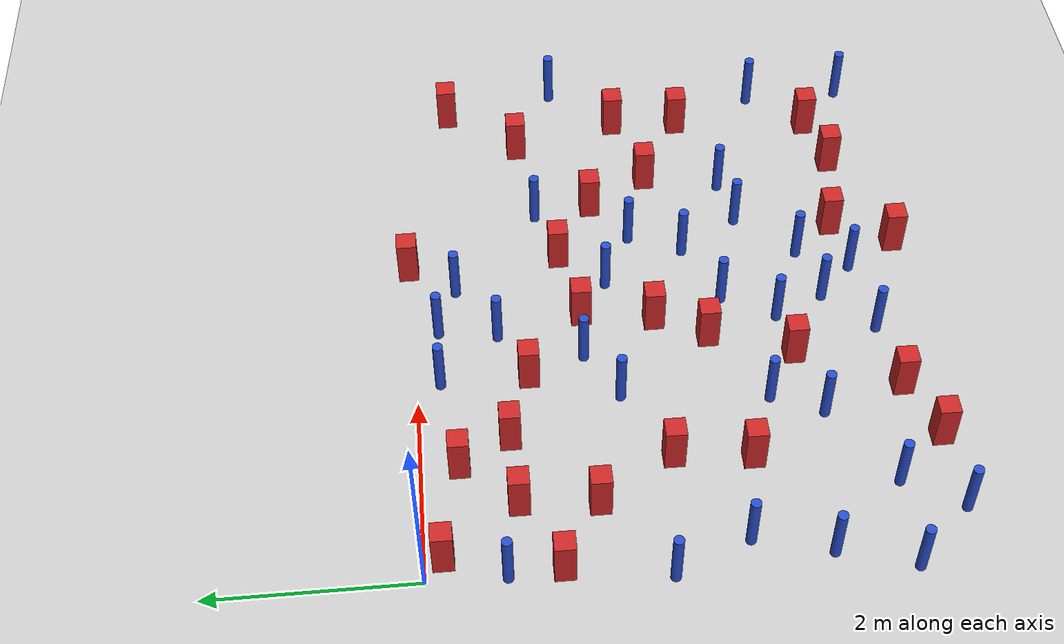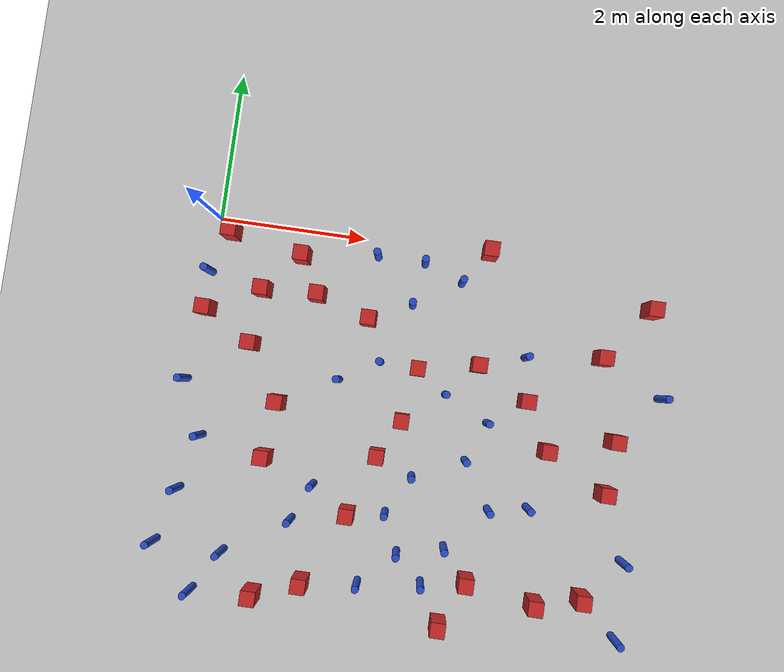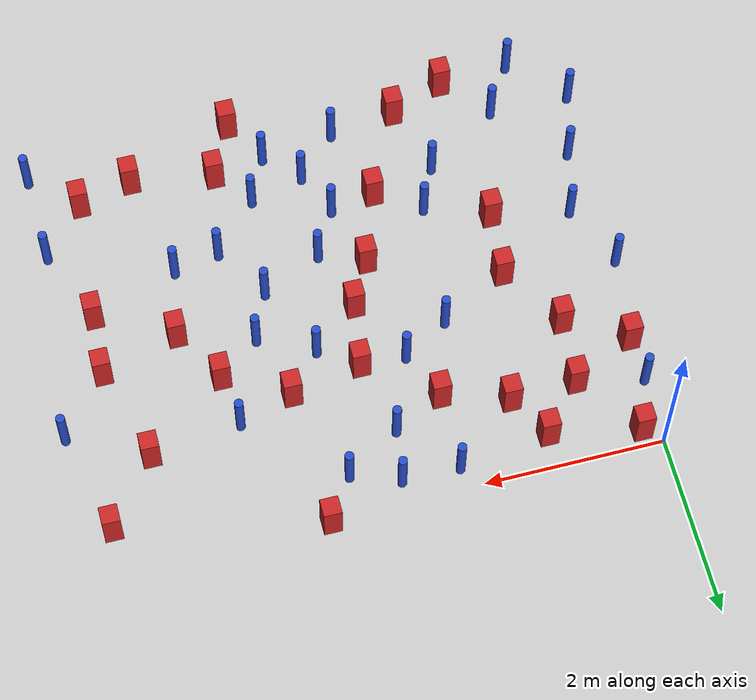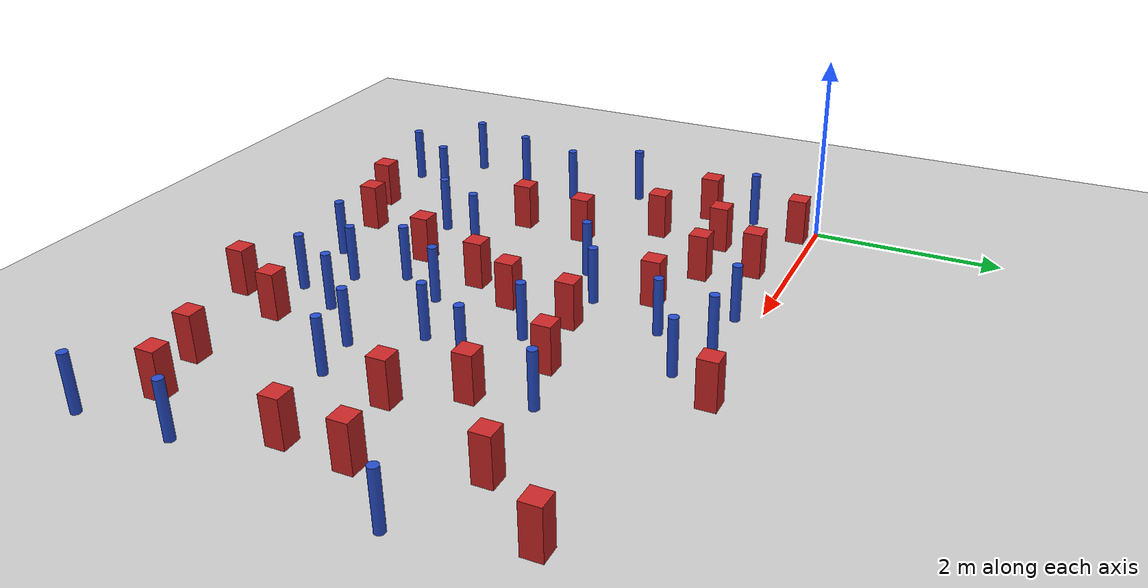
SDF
<sdf version="1.6">
 <world name="default">
  <model name="ground_plane">
   <static>1</static>
   <link name="link">
    <collision name="collision">
     <geometry><plane><normal>0 0 1</normal><size>100 100</size></plane></geometry>
     <surface><friction><ode><mu>100</mu><mu2>50</mu2></ode></friction></surface>
    </collision>
    <visual name="visual">
     <cast_shadows>0</cast_shadows>
     <geometry><plane><normal>0 0 1</normal><size>100 100</size></plane></geometry>
     <material>
      <ambient>1.0 1.0 1.0 1.0</ambient>
      <diffuse>0.8 0.8 0.8 1.0</diffuse>
      <specular>0.01 0.01 0.01 1.000000</specular>
     </material>
    </visual>
   </link>
  </model>
  <model name="NamedLocations">
   <static>true</static>
   <link name="DefaultStart"><pose>8.5 0 0 0 0 3.14</pose></link>
  </model>
  <model name="pole_obstacle0">
   <static>true</static>
   <pose>3.75022764501 -2.78739686632 -9.47619616065e-06 5.49618799737e-07 2.36310414051e-07 -1.55090534807e-07</pose>
   <link name="link">
    <pose>0 0 0.3 0 -0 0</pose>
    <inertial>
     <mass>1</mass>
     <inertia><ixx>0.145833</ixx><ixy>0</ixy><ixz>0</ixz><iyy>0.145833</iyy><iyz>0</iyz><izz>0.125</izz></inertia>
    </inertial>
    <collision name="collision">
     <geometry><cylinder><radius>0.05</radius><length>.6</length></cylinder></geometry>
    </collision>
    <visual name="visual">
     <geometry><cylinder><radius>0.05</radius><length>.6</length></cylinder></geometry>
     <material>
      <script><name>Gazebo/Blue</name><uri>file://media/materials/scripts/gazebo.material</uri></script>
     </material>
    </visual>
   </link>
  </model>
  <model name="square_post_obstacle2">
   <static>true</static>
   <pose>4.81245755548 -2.510650825 -6.11067671241e-07 -5.50515727128e-06 -8.79689657224e-07 2.37013304536e-05</pose>
   <link name="link">
    <pose>0 0 0.25 0 -0 0</pose>
    <inertial>
     <mass>100</mass>
     <inertia>
      <ixx>0.166667</ixx>
      <ixy>0</ixy>
      <ixz>0</ixz>
      <iyy>0.166667</iyy>
      <iyz>0</iyz>
      <izz>0.166667</izz>
     </inertia>
    </inertial>
    <collision name="collision"><geometry><box><size>.2 .2 .5</size></box></geometry></collision>
    <visual name="visual">
     <geometry><box><size>.2 .2 .5</size></box></geometry>
     <material>
      <script><name>Gazebo/Red</name><uri>file://media/materials/scripts/gazebo.material</uri></script>
     </material>
    </visual>
   </link>
  </model>
  <model name="pole_obstacle12">
   <static>true</static>
   <pose>3.00801249524 -4.12115570584 -9.47619616065e-06 5.49618799738e-07 2.3631041406e-07 -1.55090534801e-07</pose>
   <link name="link">
    <pose>0 0 0.3 0 -0 0</pose>
    <inertial>
     <mass>1</mass>
     <inertia><ixx>0.145833</ixx><ixy>0</ixy><ixz>0</ixz><iyy>0.145833</iyy><iyz>0</iyz><izz>0.125</izz></inertia>
    </inertial>
    <collision name="collision">
     <geometry><cylinder><radius>0.05</radius><length>.6</length></cylinder></geometry>
    </collision>
    <visual name="visual">
     <geometry><cylinder><radius>0.05</radius><length>.6</length></cylinder></geometry>
     <material>
      <script><name>Gazebo/Blue</name><uri>file://media/materials/scripts/gazebo.material</uri></script>
     </material>
    </visual>
   </link>
  </model>
  <model name="pole_obstacle14">
   <static>true</static>
   <pose>3.38613446248 -0.424734455915 -9.47619616065e-06 5.49618799738e-07 2.36310414074e-07 -1.55090534794e-07</pose>
   <link name="link">
    <pose>0 0 0.3 0 -0 0</pose>
    <inertial>
     <mass>1</mass>
     <inertia><ixx>0.145833</ixx><ixy>0</ixy><ixz>0</ixz><iyy>0.145833</iyy><iyz>0</iyz><izz>0.125</izz></inertia>
    </inertial>
    <collision name="collision">
     <geometry><cylinder><radius>0.05</radius><length>.6</length></cylinder></geometry>
    </collision>
    <visual name="visual">
     <geometry><cylinder><radius>0.05</radius><length>.6</length></cylinder></geometry>
     <material>
      <script><name>Gazebo/Blue</name><uri>file://media/materials/scripts/gazebo.material</uri></script>
     </material>
    </visual>
   </link>
  </model>
  <model name="pole_obstacle17">
   <static>true</static>
   <pose>2.2102065836 -0.225751752509 -9.4761961606e-06 5.49618799729e-07 2.36310414002e-07 -1.55090534824e-07</pose>
   <link name="link">
    <pose>0 0 0.3 0 -0 0</pose>
    <inertial>
     <mass>1</mass>
     <inertia><ixx>0.145833</ixx><ixy>0</ixy><ixz>0</ixz><iyy>0.145833</iyy><iyz>0</iyz><izz>0.125</izz></inertia>
    </inertial>
    <collision name="collision">
     <geometry><cylinder><radius>0.05</radius><length>.6</length></cylinder></geometry>
    </collision>
    <visual name="visual">
     <geometry><cylinder><radius>0.05</radius><length>.6</length></cylinder></geometry>
     <material>
      <script><name>Gazebo/Blue</name><uri>file://media/materials/scripts/gazebo.material</uri></script>
     </material>
    </visual>
   </link>
  </model>
  <model name="square_post_obstacle14">
   <static>true</static>
   <pose>1.07197444202 -3.11130883612 -6.11067671241e-07 -5.50515727128e-06 -8.79689657224e-07 2.37013304536e-05</pose>
   <link name="link">
    <pose>0 0 0.25 0 -0 0</pose>
    <inertial>
     <mass>100</mass>
     <inertia>
      <ixx>0.166667</ixx>
      <ixy>0</ixy>
      <ixz>0</ixz>
      <iyy>0.166667</iyy>
      <iyz>0</iyz>
      <izz>0.166667</izz>
     </inertia>
    </inertial>
    <collision name="collision"><geometry><box><size>.2 .2 .5</size></box></geometry></collision>
    <visual name="visual">
     <geometry><box><size>.2 .2 .5</size></box></geometry>
     <material>
      <script><name>Gazebo/Red</name><uri>file://media/materials/scripts/gazebo.material</uri></script>
     </material>
    </visual>
   </link>
  </model>
  <model name="square_post_obstacle18">
   <static>true</static>
   <pose>5.96204900526 -0.447568271579 -6.11067671241e-07 -5.50515727128e-06 -8.79689657224e-07 2.37013304536e-05</pose>
   <link name="link">
    <pose>0 0 0.25 0 -0 0</pose>
    <inertial>
     <mass>100</mass>
     <inertia>
      <ixx>0.166667</ixx>
      <ixy>0</ixy>
      <ixz>0</ixz>
      <iyy>0.166667</iyy>
      <iyz>0</iyz>
      <izz>0.166667</izz>
     </inertia>
    </inertial>
    <collision name="collision"><geometry><box><size>.2 .2 .5</size></box></geometry></collision>
    <visual name="visual">
     <geometry><box><size>.2 .2 .5</size></box></geometry>
     <material>
      <script><name>Gazebo/Red</name><uri>file://media/materials/scripts/gazebo.material</uri></script>
     </material>
    </visual>
   </link>
  </model>
  <model name="pole_obstacle24">
   <static>true</static>
   <pose>6.02116157197 -4.83870841715 -9.47619616065e-06 5.49618799737e-07 2.36310414037e-07 -1.55090534814e-07</pose>
   <link name="link">
    <pose>0 0 0.3 0 -0 0</pose>
    <inertial>
     <mass>1</mass>
     <inertia><ixx>0.145833</ixx><ixy>0</ixy><ixz>0</ixz><iyy>0.145833</iyy><iyz>0</iyz><izz>0.125</izz></inertia>
    </inertial>
    <collision name="collision">
     <geometry><cylinder><radius>0.05</radius><length>.6</length></cylinder></geometry>
    </collision>
    <visual name="visual">
     <geometry><cylinder><radius>0.05</radius><length>.6</length></cylinder></geometry>
     <material>
      <script><name>Gazebo/Blue</name><uri>file://media/materials/scripts/gazebo.material</uri></script>
     </material>
    </visual>
   </link>
  </model>
  <model name="pole_obstacle28">
   <static>true</static>
   <pose>1.5471880466 -3.88160501356 -9.47619616065e-06 5.49618799737e-07 2.36310414062e-07 -1.55090534798e-07</pose>
   <link name="link">
    <pose>0 0 0.3 0 -0 0</pose>
    <inertial>
     <mass>1</mass>
     <inertia><ixx>0.145833</ixx><ixy>0</ixy><ixz>0</ixz><iyy>0.145833</iyy><iyz>0</iyz><izz>0.125</izz></inertia>
    </inertial>
    <collision name="collision">
     <geometry><cylinder><radius>0.05</radius><length>.6</length></cylinder></geometry>
    </collision>
    <visual name="visual">
     <geometry><cylinder><radius>0.05</radius><length>.6</length></cylinder></geometry>
     <material>
      <script><name>Gazebo/Blue</name><uri>file://media/materials/scripts/gazebo.material</uri></script>
     </material>
    </visual>
   </link>
  </model>
  <model name="square_post_obstacle20">
   <static>true</static>
   <pose>1.20056298103 -0.363102534189 -6.11067671241e-07 -5.50515727128e-06 -8.79689657224e-07 2.37013304536e-05</pose>
   <link name="link">
    <pose>0 0 0.25 0 -0 0</pose>
    <inertial>
     <mass>100</mass>
     <inertia>
      <ixx>0.166667</ixx>
      <ixy>0</ixy>
      <ixz>0</ixz>
      <iyy>0.166667</iyy>
      <iyz>0</iyz>
      <izz>0.166667</izz>
     </inertia>
    </inertial>
    <collision name="collision"><geometry><box><size>.2 .2 .5</size></box></geometry></collision>
    <visual name="visual">
     <geometry><box><size>.2 .2 .5</size></box></geometry>
     <material>
      <script><name>Gazebo/Red</name><uri>file://media/materials/scripts/gazebo.material</uri></script>
     </material>
    </visual>
   </link>
  </model>
  <model name="square_post_obstacle24">
   <static>true</static>
   <pose>5.69238153053 -2.25941761397 -6.11067671241e-07 -5.50515727128e-06 -8.79689657224e-07 2.37013304536e-05</pose>
   <link name="link">
    <pose>0 0 0.25 0 -0 0</pose>
    <inertial>
     <mass>100</mass>
     <inertia>
      <ixx>0.166667</ixx>
      <ixy>0</ixy>
      <ixz>0</ixz>
      <iyy>0.166667</iyy>
      <iyz>0</iyz>
      <izz>0.166667</izz>
     </inertia>
    </inertial>
    <collision name="collision"><geometry><box><size>.2 .2 .5</size></box></geometry></collision>
    <visual name="visual">
     <geometry><box><size>.2 .2 .5</size></box></geometry>
     <material>
      <script><name>Gazebo/Red</name><uri>file://media/materials/scripts/gazebo.material</uri></script>
     </material>
    </visual>
   </link>
  </model>
  <model name="pole_obstacle33">
   <static>true</static>
   <pose>4.37285970532 -1.30527450147 -9.47619616065e-06 5.49618799738e-07 2.36310414071e-07 -1.55090534796e-07</pose>
   <link name="link">
    <pose>0 0 0.3 0 -0 0</pose>
    <inertial>
     <mass>1</mass>
     <inertia><ixx>0.145833</ixx><ixy>0</ixy><ixz>0</ixz><iyy>0.145833</iyy><iyz>0</iyz><izz>0.125</izz></inertia>
    </inertial>
    <collision name="collision">
     <geometry><cylinder><radius>0.05</radius><length>.6</length></cylinder></geometry>
    </collision>
    <visual name="visual">
     <geometry><cylinder><radius>0.05</radius><length>.6</length></cylinder></geometry>
     <material>
      <script><name>Gazebo/Blue</name><uri>file://media/materials/scripts/gazebo.material</uri></script>
     </material>
    </visual>
   </link>
  </model>
  <model name="pole_obstacle34">
   <static>true</static>
   <pose>0.185879123892 -2.94586787317 -9.47619616065e-06 5.49618799738e-07 2.36310414068e-07 -1.55090534794e-07</pose>
   <link name="link">
    <pose>0 0 0.3 0 -0 0</pose>
    <inertial>
     <mass>1</mass>
     <inertia><ixx>0.145833</ixx><ixy>0</ixy><ixz>0</ixz><iyy>0.145833</iyy><iyz>0</iyz><izz>0.125</izz></inertia>
    </inertial>
    <collision name="collision">
     <geometry><cylinder><radius>0.05</radius><length>.6</length></cylinder></geometry>
    </collision>
    <visual name="visual">
     <geometry><cylinder><radius>0.05</radius><length>.6</length></cylinder></geometry>
     <material>
      <script><name>Gazebo/Blue</name><uri>file://media/materials/scripts/gazebo.material</uri></script>
     </material>
    </visual>
   </link>
  </model>
  <model name="pole_obstacle39">
   <static>true</static>
   <pose>-0.218400632139 -4.41052256008 -9.47619616065e-06 5.49618799737e-07 2.36310414064e-07 -1.55090534799e-07</pose>
   <link name="link">
    <pose>0 0 0.3 0 -0 0</pose>
    <inertial>
     <mass>1</mass>
     <inertia><ixx>0.145833</ixx><ixy>0</ixy><ixz>0</ixz><iyy>0.145833</iyy><iyz>0</iyz><izz>0.125</izz></inertia>
    </inertial>
    <collision name="collision">
     <geometry><cylinder><radius>0.05</radius><length>.6</length></cylinder></geometry>
    </collision>
    <visual name="visual">
     <geometry><cylinder><radius>0.05</radius><length>.6</length></cylinder></geometry>
     <material>
      <script><name>Gazebo/Blue</name><uri>file://media/materials/scripts/gazebo.material</uri></script>
     </material>
    </visual>
   </link>
  </model>
  <model name="square_post_obstacle37">
   <static>true</static>
   <pose>3.96554286352 -4.37384859853 -6.11067671241e-07 -5.50515727128e-06 -8.79689657224e-07 2.37013304536e-05</pose>
   <link name="link">
    <pose>0 0 0.25 0 -0 0</pose>
    <inertial>
     <mass>100</mass>
     <inertia>
      <ixx>0.166667</ixx>
      <ixy>0</ixy>
      <ixz>0</ixz>
      <iyy>0.166667</iyy>
      <iyz>0</iyz>
      <izz>0.166667</izz>
     </inertia>
    </inertial>
    <collision name="collision"><geometry><box><size>.2 .2 .5</size></box></geometry></collision>
    <visual name="visual">
     <geometry><box><size>.2 .2 .5</size></box></geometry>
     <material>
      <script><name>Gazebo/Red</name><uri>file://media/materials/scripts/gazebo.material</uri></script>
     </material>
    </visual>
   </link>
  </model>
  <model name="pole_obstacle50">
   <static>true</static>
   <pose>-0.0118169981502 -0.739820487888 -9.47619616065e-06 5.49618799737e-07 2.36310414054e-07 -1.55090534804e-07</pose>
   <link name="link">
    <pose>0 0 0.3 0 -0 0</pose>
    <inertial>
     <mass>1</mass>
     <inertia><ixx>0.145833</ixx><ixy>0</ixy><ixz>0</ixz><iyy>0.145833</iyy><iyz>0</iyz><izz>0.125</izz></inertia>
    </inertial>
    <collision name="collision">
     <geometry><cylinder><radius>0.05</radius><length>.6</length></cylinder></geometry>
    </collision>
    <visual name="visual">
     <geometry><cylinder><radius>0.05</radius><length>.6</length></cylinder></geometry>
     <material>
      <script><name>Gazebo/Blue</name><uri>file://media/materials/scripts/gazebo.material</uri></script>
     </material>
    </visual>
   </link>
  </model>
  <model name="pole_obstacle58">
   <static>true</static>
   <pose>2.78290116565 -3.6214485532 -9.47619616065e-06 5.49618799737e-07 2.36310414051e-07 -1.55090534807e-07</pose>
   <link name="link">
    <pose>0 0 0.3 0 -0 0</pose>
    <inertial>
     <mass>1</mass>
     <inertia><ixx>0.145833</ixx><ixy>0</ixy><ixz>0</ixz><iyy>0.145833</iyy><iyz>0</iyz><izz>0.125</izz></inertia>
    </inertial>
    <collision name="collision">
     <geometry><cylinder><radius>0.05</radius><length>.6</length></cylinder></geometry>
    </collision>
    <visual name="visual">
     <geometry><cylinder><radius>0.05</radius><length>.6</length></cylinder></geometry>
     <material>
      <script><name>Gazebo/Blue</name><uri>file://media/materials/scripts/gazebo.material</uri></script>
     </material>
    </visual>
   </link>
  </model>
  <model name="pole_obstacle72">
   <static>true</static>
   <pose>3.97590463983 -2.2509630819 -9.47619616065e-06 5.49618799737e-07 2.36310414035e-07 -1.55090534817e-07</pose>
   <link name="link">
    <pose>0 0 0.3 0 -0 0</pose>
    <inertial>
     <mass>1</mass>
     <inertia><ixx>0.145833</ixx><ixy>0</ixy><ixz>0</ixz><iyy>0.145833</iyy><iyz>0</iyz><izz>0.125</izz></inertia>
    </inertial>
    <collision name="collision">
     <geometry><cylinder><radius>0.05</radius><length>.6</length></cylinder></geometry>
    </collision>
    <visual name="visual">
     <geometry><cylinder><radius>0.05</radius><length>.6</length></cylinder></geometry>
     <material>
      <script><name>Gazebo/Blue</name><uri>file://media/materials/scripts/gazebo.material</uri></script>
     </material>
    </visual>
   </link>
  </model>
  <model name="pole_obstacle79">
   <static>true</static>
   <pose>3.38028233566 -4.47599020162 -9.47619616065e-06 5.49618799738e-07 2.3631041406e-07 -1.55090534801e-07</pose>
   <link name="link">
    <pose>0 0 0.3 0 -0 0</pose>
    <inertial>
     <mass>1</mass>
     <inertia><ixx>0.145833</ixx><ixy>0</ixy><ixz>0</ixz><iyy>0.145833</iyy><iyz>0</iyz><izz>0.125</izz></inertia>
    </inertial>
    <collision name="collision">
     <geometry><cylinder><radius>0.05</radius><length>.6</length></cylinder></geometry>
    </collision>
    <visual name="visual">
     <geometry><cylinder><radius>0.05</radius><length>.6</length></cylinder></geometry>
     <material>
      <script><name>Gazebo/Blue</name><uri>file://media/materials/scripts/gazebo.material</uri></script>
     </material>
    </visual>
   </link>
  </model>
  <model name="pole_obstacle86">
   <static>true</static>
   <pose>5.99808866359 -3.82478326381 -9.47619616065e-06 5.49618799738e-07 2.36310414051e-07 -1.55090534805e-07</pose>
   <link name="link">
    <pose>0 0 0.3 0 -0 0</pose>
    <inertial>
     <mass>1</mass>
     <inertia><ixx>0.145833</ixx><ixy>0</ixy><ixz>0</ixz><iyy>0.145833</iyy><iyz>0</iyz><izz>0.125</izz></inertia>
    </inertial>
    <collision name="collision">
     <geometry><cylinder><radius>0.05</radius><length>.6</length></cylinder></geometry>
    </collision>
    <visual name="visual">
     <geometry><cylinder><radius>0.05</radius><length>.6</length></cylinder></geometry>
     <material>
      <script><name>Gazebo/Blue</name><uri>file://media/materials/scripts/gazebo.material</uri></script>
     </material>
    </visual>
   </link>
  </model>
  <model name="pole_obstacle92">
   <static>true</static>
   <pose>4.65938943377 -3.29528662944 -9.47619616065e-06 5.49618799738e-07 2.36310414051e-07 -1.55090534805e-07</pose>
   <link name="link">
    <pose>0 0 0.3 0 -0 0</pose>
    <inertial>
     <mass>1</mass>
     <inertia><ixx>0.145833</ixx><ixy>0</ixy><ixz>0</ixz><iyy>0.145833</iyy><iyz>0</iyz><izz>0.125</izz></inertia>
    </inertial>
    <collision name="collision">
     <geometry><cylinder><radius>0.05</radius><length>.6</length></cylinder></geometry>
    </collision>
    <visual name="visual">
     <geometry><cylinder><radius>0.05</radius><length>.6</length></cylinder></geometry>
     <material>
      <script><name>Gazebo/Blue</name><uri>file://media/materials/scripts/gazebo.material</uri></script>
     </material>
    </visual>
   </link>
  </model>
  <model name="square_post_obstacle95">
   <static>true</static>
   <pose>1.80040140308 -4.68392693598 -6.11067671241e-07 -5.50515727128e-06 -8.79689657224e-07 2.37013304536e-05</pose>
   <link name="link">
    <pose>0 0 0.25 0 -0 0</pose>
    <inertial>
     <mass>100</mass>
     <inertia>
      <ixx>0.166667</ixx>
      <ixy>0</ixy>
      <ixz>0</ixz>
      <iyy>0.166667</iyy>
      <iyz>0</iyz>
      <izz>0.166667</izz>
     </inertia>
    </inertial>
    <collision name="collision"><geometry><box><size>.2 .2 .5</size></box></geometry></collision>
    <visual name="visual">
     <geometry><box><size>.2 .2 .5</size></box></geometry>
     <material>
      <script><name>Gazebo/Red</name><uri>file://media/materials/scripts/gazebo.material</uri></script>
     </material>
    </visual>
   </link>
  </model>
  <model name="pole_obstacle103">
   <static>true</static>
   <pose>1.77133836651 -3.38741196655 -9.47619616065e-06 5.49618799737e-07 2.36310414062e-07 -1.55090534798e-07</pose>
   <link name="link">
    <pose>0 0 0.3 0 -0 0</pose>
    <inertial>
     <mass>1</mass>
     <inertia><ixx>0.145833</ixx><ixy>0</ixy><ixz>0</ixz><iyy>0.145833</iyy><iyz>0</iyz><izz>0.125</izz></inertia>
    </inertial>
    <collision name="collision">
     <geometry><cylinder><radius>0.05</radius><length>.6</length></cylinder></geometry>
    </collision>
    <visual name="visual">
     <geometry><cylinder><radius>0.05</radius><length>.6</length></cylinder></geometry>
     <material>
      <script><name>Gazebo/Blue</name><uri>file://media/materials/scripts/gazebo.material</uri></script>
     </material>
    </visual>
   </link>
  </model>
  <model name="square_post_obstacle98">
   <static>true</static>
   <pose>0.680991383869 -1.62937942209 -6.11067671241e-07 -5.50515727128e-06 -8.79689657224e-07 2.37013304536e-05</pose>
   <link name="link">
    <pose>0 0 0.25 0 -0 0</pose>
    <inertial>
     <mass>100</mass>
     <inertia>
      <ixx>0.166667</ixx>
      <ixy>0</ixy>
      <ixz>0</ixz>
      <iyy>0.166667</iyy>
      <iyz>0</iyz>
      <izz>0.166667</izz>
     </inertia>
    </inertial>
    <collision name="collision"><geometry><box><size>.2 .2 .5</size></box></geometry></collision>
    <visual name="visual">
     <geometry><box><size>.2 .2 .5</size></box></geometry>
     <material>
      <script><name>Gazebo/Red</name><uri>file://media/materials/scripts/gazebo.material</uri></script>
     </material>
    </visual>
   </link>
  </model>
  <model name="square_post_obstacle100">
   <static>true</static>
   <pose>2.95380251722 -1.66070555415 -6.11067671241e-07 -5.50515727128e-06 -8.79689657224e-07 2.37013304536e-05</pose>
   <link name="link">
    <pose>0 0 0.25 0 -0 0</pose>
    <inertial>
     <mass>100</mass>
     <inertia>
      <ixx>0.166667</ixx>
      <ixy>0</ixy>
      <ixz>0</ixz>
      <iyy>0.166667</iyy>
      <iyz>0</iyz>
      <izz>0.166667</izz>
     </inertia>
    </inertial>
    <collision name="collision"><geometry><box><size>.2 .2 .5</size></box></geometry></collision>
    <visual name="visual">
     <geometry><box><size>.2 .2 .5</size></box></geometry>
     <material>
      <script><name>Gazebo/Red</name><uri>file://media/materials/scripts/gazebo.material</uri></script>
     </material>
    </visual>
   </link>
  </model>
  <model name="square_post_obstacle104">
   <static>true</static>
   <pose>5.39091607666 -1.17541266023 -6.11067671241e-07 -5.50515727128e-06 -8.79689657224e-07 2.37013304536e-05</pose>
   <link name="link">
    <pose>0 0 0.25 0 -0 0</pose>
    <inertial>
     <mass>100</mass>
     <inertia>
      <ixx>0.166667</ixx>
      <ixy>0</ixy>
      <ixz>0</ixz>
      <iyy>0.166667</iyy>
      <iyz>0</iyz>
      <izz>0.166667</izz>
     </inertia>
    </inertial>
    <collision name="collision"><geometry><box><size>.2 .2 .5</size></box></geometry></collision>
    <visual name="visual">
     <geometry><box><size>.2 .2 .5</size></box></geometry>
     <material>
      <script><name>Gazebo/Red</name><uri>file://media/materials/scripts/gazebo.material</uri></script>
     </material>
    </visual>
   </link>
  </model>
  <model name="square_post_obstacle107">
   <static>true</static>
   <pose>0.015992600785 -1.24432571806 -6.11067671241e-07 -5.50515727128e-06 -8.79689657224e-07 2.37013304536e-05</pose>
   <link name="link">
    <pose>0 0 0.25 0 -0 0</pose>
    <inertial>
     <mass>100</mass>
     <inertia>
      <ixx>0.166667</ixx>
      <ixy>0</ixy>
      <ixz>0</ixz>
      <iyy>0.166667</iyy>
      <iyz>0</iyz>
      <izz>0.166667</izz>
     </inertia>
    </inertial>
    <collision name="collision"><geometry><box><size>.2 .2 .5</size></box></geometry></collision>
    <visual name="visual">
     <geometry><box><size>.2 .2 .5</size></box></geometry>
     <material>
      <script><name>Gazebo/Red</name><uri>file://media/materials/scripts/gazebo.material</uri></script>
     </material>
    </visual>
   </link>
  </model>
  <model name="square_post_obstacle108">
   <static>true</static>
   <pose>0.206764405029 -0.171542030957 -6.11067671241e-07 -5.50515727128e-06 -8.79689657224e-07 2.37013304536e-05</pose>
   <link name="link">
    <pose>0 0 0.25 0 -0 0</pose>
    <inertial>
     <mass>100</mass>
     <inertia>
      <ixx>0.166667</ixx>
      <ixy>0</ixy>
      <ixz>0</ixz>
      <iyy>0.166667</iyy>
      <iyz>0</iyz>
      <izz>0.166667</izz>
     </inertia>
    </inertial>
    <collision name="collision"><geometry><box><size>.2 .2 .5</size></box></geometry></collision>
    <visual name="visual">
     <geometry><box><size>.2 .2 .5</size></box></geometry>
     <material>
      <script><name>Gazebo/Red</name><uri>file://media/materials/scripts/gazebo.material</uri></script>
     </material>
    </visual>
   </link>
  </model>
  <model name="pole_obstacle113">
   <static>true</static>
   <pose>0.697426534941 -4.42554477868 -9.47619616065e-06 5.49618799737e-07 2.36310414065e-07 -1.55090534796e-07</pose>
   <link name="link">
    <pose>0 0 0.3 0 -0 0</pose>
    <inertial>
     <mass>1</mass>
     <inertia><ixx>0.145833</ixx><ixy>0</ixy><ixz>0</ixz><iyy>0.145833</iyy><iyz>0</iyz><izz>0.125</izz></inertia>
    </inertial>
    <collision name="collision">
     <geometry><cylinder><radius>0.05</radius><length>.6</length></cylinder></geometry>
    </collision>
    <visual name="visual">
     <geometry><cylinder><radius>0.05</radius><length>.6</length></cylinder></geometry>
     <material>
      <script><name>Gazebo/Blue</name><uri>file://media/materials/scripts/gazebo.material</uri></script>
     </material>
    </visual>
   </link>
  </model>
  <model name="square_post_obstacle113">
   <static>true</static>
   <pose>1.48086590372 -0.855647371928 -6.11067671241e-07 -5.50515727128e-06 -8.79689657224e-07 2.37013304536e-05</pose>
   <link name="link">
    <pose>0 0 0.25 0 -0 0</pose>
    <inertial>
     <mass>100</mass>
     <inertia>
      <ixx>0.166667</ixx>
      <ixy>0</ixy>
      <ixz>0</ixz>
      <iyy>0.166667</iyy>
      <iyz>0</iyz>
      <izz>0.166667</izz>
     </inertia>
    </inertial>
    <collision name="collision"><geometry><box><size>.2 .2 .5</size></box></geometry></collision>
    <visual name="visual">
     <geometry><box><size>.2 .2 .5</size></box></geometry>
     <material>
      <script><name>Gazebo/Red</name><uri>file://media/materials/scripts/gazebo.material</uri></script>
     </material>
    </visual>
   </link>
  </model>
  <model name="square_post_obstacle119">
   <static>true</static>
   <pose>0.738021530404 -0.888769480005 -6.11067671241e-07 -5.50515727128e-06 -8.79689657224e-07 2.37013304536e-05</pose>
   <link name="link">
    <pose>0 0 0.25 0 -0 0</pose>
    <inertial>
     <mass>100</mass>
     <inertia>
      <ixx>0.166667</ixx>
      <ixy>0</ixy>
      <ixz>0</ixz>
      <iyy>0.166667</iyy>
      <iyz>0</iyz>
      <izz>0.166667</izz>
     </inertia>
    </inertial>
    <collision name="collision"><geometry><box><size>.2 .2 .5</size></box></geometry></collision>
    <visual name="visual">
     <geometry><box><size>.2 .2 .5</size></box></geometry>
     <material>
      <script><name>Gazebo/Red</name><uri>file://media/materials/scripts/gazebo.material</uri></script>
     </material>
    </visual>
   </link>
  </model>
  <model name="pole_obstacle121">
   <static>true</static>
   <pose>3.06765448592 -3.09649643441 -9.47619616065e-06 5.49618799737e-07 2.36310414051e-07 -1.55090534807e-07</pose>
   <link name="link">
    <pose>0 0 0.3 0 -0 0</pose>
    <inertial>
     <mass>1</mass>
     <inertia><ixx>0.145833</ixx><ixy>0</ixy><ixz>0</ixz><iyy>0.145833</iyy><iyz>0</iyz><izz>0.125</izz></inertia>
    </inertial>
    <collision name="collision">
     <geometry><cylinder><radius>0.05</radius><length>.6</length></cylinder></geometry>
    </collision>
    <visual name="visual">
     <geometry><cylinder><radius>0.05</radius><length>.6</length></cylinder></geometry>
     <material>
      <script><name>Gazebo/Blue</name><uri>file://media/materials/scripts/gazebo.material</uri></script>
     </material>
    </visual>
   </link>
  </model>
  <model name="square_post_obstacle121">
   <static>true</static>
   <pose>5.51289084762 -4.37807095673 -6.11067671241e-07 -5.50515727128e-06 -8.79689657224e-07 2.37013304536e-05</pose>
   <link name="link">
    <pose>0 0 0.25 0 -0 0</pose>
    <inertial>
     <mass>100</mass>
     <inertia>
      <ixx>0.166667</ixx>
      <ixy>0</ixy>
      <ixz>0</ixz>
      <iyy>0.166667</iyy>
      <iyz>0</iyz>
      <izz>0.166667</izz>
     </inertia>
    </inertial>
    <collision name="collision"><geometry><box><size>.2 .2 .5</size></box></geometry></collision>
    <visual name="visual">
     <geometry><box><size>.2 .2 .5</size></box></geometry>
     <material>
      <script><name>Gazebo/Red</name><uri>file://media/materials/scripts/gazebo.material</uri></script>
     </material>
    </visual>
   </link>
  </model>
  <model name="pole_obstacle126">
   <static>true</static>
   <pose>-0.00813553622191 -3.67959947322 -9.47619616065e-06 5.49618799737e-07 2.3631041407e-07 -1.55090534793e-07</pose>
   <link name="link">
    <pose>0 0 0.3 0 -0 0</pose>
    <inertial>
     <mass>1</mass>
     <inertia><ixx>0.145833</ixx><ixy>0</ixy><ixz>0</ixz><iyy>0.145833</iyy><iyz>0</iyz><izz>0.125</izz></inertia>
    </inertial>
    <collision name="collision">
     <geometry><cylinder><radius>0.05</radius><length>.6</length></cylinder></geometry>
    </collision>
    <visual name="visual">
     <geometry><cylinder><radius>0.05</radius><length>.6</length></cylinder></geometry>
     <material>
      <script><name>Gazebo/Blue</name><uri>file://media/materials/scripts/gazebo.material</uri></script>
     </material>
    </visual>
   </link>
  </model>
  <model name="square_post_obstacle122">
   <static>true</static>
   <pose>2.83434650488 -2.38176665453 -6.11067671241e-07 -5.50515727128e-06 -8.79689657224e-07 2.37013304536e-05</pose>
   <link name="link">
    <pose>0 0 0.25 0 -0 0</pose>
    <inertial>
     <mass>100</mass>
     <inertia>
      <ixx>0.166667</ixx>
      <ixy>0</ixy>
      <ixz>0</ixz>
      <iyy>0.166667</iyy>
      <iyz>0</iyz>
      <izz>0.166667</izz>
     </inertia>
    </inertial>
    <collision name="collision"><geometry><box><size>.2 .2 .5</size></box></geometry></collision>
    <visual name="visual">
     <geometry><box><size>.2 .2 .5</size></box></geometry>
     <material>
      <script><name>Gazebo/Red</name><uri>file://media/materials/scripts/gazebo.material</uri></script>
     </material>
    </visual>
   </link>
  </model>
  <model name="pole_obstacle127">
   <static>true</static>
   <pose>3.62236910023 -3.96675022252 -9.47619616065e-06 5.49618799737e-07 2.36310414046e-07 -1.5509053481e-07</pose>
   <link name="link">
    <pose>0 0 0.3 0 -0 0</pose>
    <inertial>
     <mass>1</mass>
     <inertia><ixx>0.145833</ixx><ixy>0</ixy><ixz>0</ixz><iyy>0.145833</iyy><iyz>0</iyz><izz>0.125</izz></inertia>
    </inertial>
    <collision name="collision">
     <geometry><cylinder><radius>0.05</radius><length>.6</length></cylinder></geometry>
    </collision>
    <visual name="visual">
     <geometry><cylinder><radius>0.05</radius><length>.6</length></cylinder></geometry>
     <material>
      <script><name>Gazebo/Blue</name><uri>file://media/materials/scripts/gazebo.material</uri></script>
     </material>
    </visual>
   </link>
  </model>
  <model name="square_post_obstacle127">
   <static>true</static>
   <pose>1.14698067438 -2.36596639278 -6.11067671241e-07 -5.50515727128e-06 -8.79689657224e-07 2.37013304536e-05</pose>
   <link name="link">
    <pose>0 0 0.25 0 -0 0</pose>
    <inertial>
     <mass>100</mass>
     <inertia>
      <ixx>0.166667</ixx>
      <ixy>0</ixy>
      <ixz>0</ixz>
      <iyy>0.166667</iyy>
      <iyz>0</iyz>
      <izz>0.166667</izz>
     </inertia>
    </inertial>
    <collision name="collision"><geometry><box><size>.2 .2 .5</size></box></geometry></collision>
    <visual name="visual">
     <geometry><box><size>.2 .2 .5</size></box></geometry>
     <material>
      <script><name>Gazebo/Red</name><uri>file://media/materials/scripts/gazebo.material</uri></script>
     </material>
    </visual>
   </link>
  </model>
  <model name="pole_obstacle144">
   <static>true</static>
   <pose>1.91404089824 -1.95205047391 -9.47619616065e-06 5.49618799737e-07 2.3631041406e-07 -1.550905348e-07</pose>
   <link name="link">
    <pose>0 0 0.3 0 -0 0</pose>
    <inertial>
     <mass>1</mass>
     <inertia><ixx>0.145833</ixx><ixy>0</ixy><ixz>0</ixz><iyy>0.145833</iyy><iyz>0</iyz><izz>0.125</izz></inertia>
    </inertial>
    <collision name="collision">
     <geometry><cylinder><radius>0.05</radius><length>.6</length></cylinder></geometry>
    </collision>
    <visual name="visual">
     <geometry><cylinder><radius>0.05</radius><length>.6</length></cylinder></geometry>
     <material>
      <script><name>Gazebo/Blue</name><uri>file://media/materials/scripts/gazebo.material</uri></script>
     </material>
    </visual>
   </link>
  </model>
  <model name="pole_obstacle145">
   <static>true</static>
   <pose>3.36829490959 -1.95070189753 -9.47619616065e-06 5.49618799737e-07 2.36310414067e-07 -1.55090534796e-07</pose>
   <link name="link">
    <pose>0 0 0.3 0 -0 0</pose>
    <inertial>
     <mass>1</mass>
     <inertia><ixx>0.145833</ixx><ixy>0</ixy><ixz>0</ixz><iyy>0.145833</iyy><iyz>0</iyz><izz>0.125</izz></inertia>
    </inertial>
    <collision name="collision">
     <geometry><cylinder><radius>0.05</radius><length>.6</length></cylinder></geometry>
    </collision>
    <visual name="visual">
     <geometry><cylinder><radius>0.05</radius><length>.6</length></cylinder></geometry>
     <material>
      <script><name>Gazebo/Blue</name><uri>file://media/materials/scripts/gazebo.material</uri></script>
     </material>
    </visual>
   </link>
  </model>
  <model name="pole_obstacle151">
   <static>true</static>
   <pose>6.24100601026 -1.60315488911 -9.47619616065e-06 5.49618799738e-07 2.36310414071e-07 -1.55090534796e-07</pose>
   <link name="link">
    <pose>0 0 0.3 0 -0 0</pose>
    <inertial>
     <mass>1</mass>
     <inertia><ixx>0.145833</ixx><ixy>0</ixy><ixz>0</ixz><iyy>0.145833</iyy><iyz>0</iyz><izz>0.125</izz></inertia>
    </inertial>
    <collision name="collision">
     <geometry><cylinder><radius>0.05</radius><length>.6</length></cylinder></geometry>
    </collision>
    <visual name="visual">
     <geometry><cylinder><radius>0.05</radius><length>.6</length></cylinder></geometry>
     <material>
      <script><name>Gazebo/Blue</name><uri>file://media/materials/scripts/gazebo.material</uri></script>
     </material>
    </visual>
   </link>
  </model>
  <model name="pole_obstacle154">
   <static>true</static>
   <pose>4.14064694416 -3.39698899075 -9.47619616065e-06 5.49618799738e-07 2.36310414051e-07 -1.55090534805e-07</pose>
   <link name="link">
    <pose>0 0 0.3 0 -0 0</pose>
    <inertial>
     <mass>1</mass>
     <inertia><ixx>0.145833</ixx><ixy>0</ixy><ixz>0</ixz><iyy>0.145833</iyy><iyz>0</iyz><izz>0.125</izz></inertia>
    </inertial>
    <collision name="collision">
     <geometry><cylinder><radius>0.05</radius><length>.6</length></cylinder></geometry>
    </collision>
    <visual name="visual">
     <geometry><cylinder><radius>0.05</radius><length>.6</length></cylinder></geometry>
     <material>
      <script><name>Gazebo/Blue</name><uri>file://media/materials/scripts/gazebo.material</uri></script>
     </material>
    </visual>
   </link>
  </model>
  <model name="square_post_obstacle165">
   <static>true</static>
   <pose>3.70437155545 0.0417454656269 -6.11067671241e-07 -5.50515727128e-06 -8.79689657224e-07 2.37013304536e-05</pose>
   <link name="link">
    <pose>0 0 0.25 0 -0 0</pose>
    <inertial>
     <mass>100</mass>
     <inertia>
      <ixx>0.166667</ixx>
      <ixy>0</ixy>
      <ixz>0</ixz>
      <iyy>0.166667</iyy>
      <iyz>0</iyz>
      <izz>0.166667</izz>
     </inertia>
    </inertial>
    <collision name="collision"><geometry><box><size>.2 .2 .5</size></box></geometry></collision>
    <visual name="visual">
     <geometry><box><size>.2 .2 .5</size></box></geometry>
     <material>
      <script><name>Gazebo/Red</name><uri>file://media/materials/scripts/gazebo.material</uri></script>
     </material>
    </visual>
   </link>
  </model>
  <model name="square_post_obstacle169">
   <static>true</static>
   <pose>2.28291017371 -3.70713900406 -6.11067671241e-07 -5.50515727128e-06 -8.79689657224e-07 2.37013304536e-05</pose>
   <link name="link">
    <pose>0 0 0.25 0 -0 0</pose>
    <inertial>
     <mass>100</mass>
     <inertia>
      <ixx>0.166667</ixx>
      <ixy>0</ixy>
      <ixz>0</ixz>
      <iyy>0.166667</iyy>
      <iyz>0</iyz>
      <izz>0.166667</izz>
     </inertia>
    </inertial>
    <collision name="collision"><geometry><box><size>.2 .2 .5</size></box></geometry></collision>
    <visual name="visual">
     <geometry><box><size>.2 .2 .5</size></box></geometry>
     <material>
      <script><name>Gazebo/Red</name><uri>file://media/materials/scripts/gazebo.material</uri></script>
     </material>
    </visual>
   </link>
  </model>
  <model name="pole_obstacle174">
   <static>true</static>
   <pose>-0.131956338264 -2.22157641874 -9.4761961606e-06 5.49618799729e-07 2.36310413997e-07 -1.55090534825e-07</pose>
   <link name="link">
    <pose>0 0 0.3 0 -0 0</pose>
    <inertial>
     <mass>1</mass>
     <inertia><ixx>0.145833</ixx><ixy>0</ixy><ixz>0</ixz><iyy>0.145833</iyy><iyz>0</iyz><izz>0.125</izz></inertia>
    </inertial>
    <collision name="collision">
     <geometry><cylinder><radius>0.05</radius><length>.6</length></cylinder></geometry>
    </collision>
    <visual name="visual">
     <geometry><cylinder><radius>0.05</radius><length>.6</length></cylinder></geometry>
     <material>
      <script><name>Gazebo/Blue</name><uri>file://media/materials/scripts/gazebo.material</uri></script>
     </material>
    </visual>
   </link>
  </model>
  <model name="square_post_obstacle174">
   <static>true</static>
   <pose>2.20734698909 -1.08588567087 -6.11067671241e-07 -5.50515727128e-06 -8.79689657224e-07 2.37013304536e-05</pose>
   <link name="link">
    <pose>0 0 0.25 0 -0 0</pose>
    <inertial>
     <mass>100</mass>
     <inertia>
      <ixx>0.166667</ixx>
      <ixy>0</ixy>
      <ixz>0</ixz>
      <iyy>0.166667</iyy>
      <iyz>0</iyz>
      <izz>0.166667</izz>
     </inertia>
    </inertial>
    <collision name="collision"><geometry><box><size>.2 .2 .5</size></box></geometry></collision>
    <visual name="visual">
     <geometry><box><size>.2 .2 .5</size></box></geometry>
     <material>
      <script><name>Gazebo/Red</name><uri>file://media/materials/scripts/gazebo.material</uri></script>
     </material>
    </visual>
   </link>
  </model>
  <model name="square_post_obstacle176">
   <static>true</static>
   <pose>5.647678598 -2.95840036425 -6.11067671241e-07 -5.50515727128e-06 -8.79689657224e-07 2.37013304536e-05</pose>
   <link name="link">
    <pose>0 0 0.25 0 -0 0</pose>
    <inertial>
     <mass>100</mass>
     <inertia>
      <ixx>0.166667</ixx>
      <ixy>0</ixy>
      <ixz>0</ixz>
      <iyy>0.166667</iyy>
      <iyz>0</iyz>
      <izz>0.166667</izz>
     </inertia>
    </inertial>
    <collision name="collision"><geometry><box><size>.2 .2 .5</size></box></geometry></collision>
    <visual name="visual">
     <geometry><box><size>.2 .2 .5</size></box></geometry>
     <material>
      <script><name>Gazebo/Red</name><uri>file://media/materials/scripts/gazebo.material</uri></script>
     </material>
    </visual>
   </link>
  </model>
  <model name="pole_obstacle183">
   <static>true</static>
   <pose>2.85477648332 -0.23077701019 -9.4761961606e-06 5.49618799729e-07 2.36310414002e-07 -1.55090534824e-07</pose>
   <link name="link">
    <pose>0 0 0.3 0 -0 0</pose>
    <inertial>
     <mass>1</mass>
     <inertia><ixx>0.145833</ixx><ixy>0</ixy><ixz>0</ixz><iyy>0.145833</iyy><iyz>0</iyz><izz>0.125</izz></inertia>
    </inertial>
    <collision name="collision">
     <geometry><cylinder><radius>0.05</radius><length>.6</length></cylinder></geometry>
    </collision>
    <visual name="visual">
     <geometry><cylinder><radius>0.05</radius><length>.6</length></cylinder></geometry>
     <material>
      <script><name>Gazebo/Blue</name><uri>file://media/materials/scripts/gazebo.material</uri></script>
     </material>
    </visual>
   </link>
  </model>
  <model name="square_post_obstacle191">
   <static>true</static>
   <pose>3.67807349182 -4.98123604697 -6.11067671241e-07 -5.50515727128e-06 -8.79689657224e-07 2.37013304536e-05</pose>
   <link name="link">
    <pose>0 0 0.25 0 -0 0</pose>
    <inertial>
     <mass>100</mass>
     <inertia>
      <ixx>0.166667</ixx>
      <ixy>0</ixy>
      <ixz>0</ixz>
      <iyy>0.166667</iyy>
      <iyz>0</iyz>
      <izz>0.166667</izz>
     </inertia>
    </inertial>
    <collision name="collision"><geometry><box><size>.2 .2 .5</size></box></geometry></collision>
    <visual name="visual">
     <geometry><box><size>.2 .2 .5</size></box></geometry>
     <material>
      <script><name>Gazebo/Red</name><uri>file://media/materials/scripts/gazebo.material</uri></script>
     </material>
    </visual>
   </link>
  </model>
  <model name="square_post_obstacle196">
   <static>true</static>
   <pose>4.45517274165 -1.89042369578 -6.11067671241e-07 -5.50515727128e-06 -8.79689657224e-07 2.37013304536e-05</pose>
   <link name="link">
    <pose>0 0 0.25 0 -0 0</pose>
    <inertial>
     <mass>100</mass>
     <inertia>
      <ixx>0.166667</ixx>
      <ixy>0</ixy>
      <ixz>0</ixz>
      <iyy>0.166667</iyy>
      <iyz>0</iyz>
      <izz>0.166667</izz>
     </inertia>
    </inertial>
    <collision name="collision"><geometry><box><size>.2 .2 .5</size></box></geometry></collision>
    <visual name="visual">
     <geometry><box><size>.2 .2 .5</size></box></geometry>
     <material>
      <script><name>Gazebo/Red</name><uri>file://media/materials/scripts/gazebo.material</uri></script>
     </material>
    </visual>
   </link>
  </model>
  <model name="pole_obstacle188">
   <static>true</static>
   <pose>2.54524938394 -4.58826126052 -9.47619616065e-06 5.49618799738e-07 2.3631041406e-07 -1.55090534801e-07</pose>
   <link name="link">
    <pose>0 0 0.3 0 -0 0</pose>
    <inertial>
     <mass>1</mass>
     <inertia><ixx>0.145833</ixx><ixy>0</ixy><ixz>0</ixz><iyy>0.145833</iyy><iyz>0</iyz><izz>0.125</izz></inertia>
    </inertial>
    <collision name="collision">
     <geometry><cylinder><radius>0.05</radius><length>.6</length></cylinder></geometry>
    </collision>
    <visual name="visual">
     <geometry><cylinder><radius>0.05</radius><length>.6</length></cylinder></geometry>
     <material>
      <script><name>Gazebo/Blue</name><uri>file://media/materials/scripts/gazebo.material</uri></script>
     </material>
    </visual>
   </link>
  </model>
  <model name="pole_obstacle194">
   <static>true</static>
   <pose>2.76427737887 -0.813701315668 -9.47619616065e-06 5.49618799738e-07 2.36310414075e-07 -1.55090534793e-07</pose>
   <link name="link">
    <pose>0 0 0.3 0 -0 0</pose>
    <inertial>
     <mass>1</mass>
     <inertia><ixx>0.145833</ixx><ixy>0</ixy><ixz>0</ixz><iyy>0.145833</iyy><iyz>0</iyz><izz>0.125</izz></inertia>
    </inertial>
    <collision name="collision">
     <geometry><cylinder><radius>0.05</radius><length>.6</length></cylinder></geometry>
    </collision>
    <visual name="visual">
     <geometry><cylinder><radius>0.05</radius><length>.6</length></cylinder></geometry>
     <material>
      <script><name>Gazebo/Blue</name><uri>file://media/materials/scripts/gazebo.material</uri></script>
     </material>
    </visual>
   </link>
  </model>
  <model name="pole_obstacle208">
   <static>true</static>
   <pose>2.43746300461 -1.64211364015 -9.47619616065e-06 5.49618799737e-07 2.36310414072e-07 -1.55090534793e-07</pose>
   <link name="link">
    <pose>0 0 0.3 0 -0 0</pose>
    <inertial>
     <mass>1</mass>
     <inertia><ixx>0.145833</ixx><ixy>0</ixy><ixz>0</ixz><iyy>0.145833</iyy><iyz>0</iyz><izz>0.125</izz></inertia>
    </inertial>
    <collision name="collision">
     <geometry><cylinder><radius>0.05</radius><length>.6</length></cylinder></geometry>
    </collision>
    <visual name="visual">
     <geometry><cylinder><radius>0.05</radius><length>.6</length></cylinder></geometry>
     <material>
      <script><name>Gazebo/Blue</name><uri>file://media/materials/scripts/gazebo.material</uri></script>
     </material>
    </visual>
   </link>
  </model>
  <model name="pole_obstacle209">
   <static>true</static>
   <pose>0.360457568058 -4.98082141876 -9.47619616065e-06 5.49618799737e-07 2.36310414065e-07 -1.55090534796e-07</pose>
   <link name="link">
    <pose>0 0 0.3 0 -0 0</pose>
    <inertial>
     <mass>1</mass>
     <inertia><ixx>0.145833</ixx><ixy>0</ixy><ixz>0</ixz><iyy>0.145833</iyy><iyz>0</iyz><izz>0.125</izz></inertia>
    </inertial>
    <collision name="collision">
     <geometry><cylinder><radius>0.05</radius><length>.6</length></cylinder></geometry>
    </collision>
    <visual name="visual">
     <geometry><cylinder><radius>0.05</radius><length>.6</length></cylinder></geometry>
     <material>
      <script><name>Gazebo/Blue</name><uri>file://media/materials/scripts/gazebo.material</uri></script>
     </material>
    </visual>
   </link>
  </model>
  <model name="square_post_obstacle210">
   <static>true</static>
   <pose>4.90134365964 -4.53560830239 -6.11067671241e-07 -5.50515727128e-06 -8.79689657224e-07 2.37013304536e-05</pose>
   <link name="link">
    <pose>0 0 0.25 0 -0 0</pose>
    <inertial>
     <mass>100</mass>
     <inertia>
      <ixx>0.166667</ixx>
      <ixy>0</ixy>
      <ixz>0</ixz>
      <iyy>0.166667</iyy>
      <iyz>0</iyz>
      <izz>0.166667</izz>
     </inertia>
    </inertial>
    <collision name="collision"><geometry><box><size>.2 .2 .5</size></box></geometry></collision>
    <visual name="visual">
     <geometry><box><size>.2 .2 .5</size></box></geometry>
     <material>
      <script><name>Gazebo/Red</name><uri>file://media/materials/scripts/gazebo.material</uri></script>
     </material>
    </visual>
   </link>
  </model>
  <model name="square_post_obstacle212">
   <static>true</static>
   <pose>3.755887751 -1.4995537559 -6.11067671241e-07 -5.50515727128e-06 -8.79689657224e-07 2.37013304536e-05</pose>
   <link name="link">
    <pose>0 0 0.25 0 -0 0</pose>
    <inertial>
     <mass>100</mass>
     <inertia>
      <ixx>0.166667</ixx>
      <ixy>0</ixy>
      <ixz>0</ixz>
      <iyy>0.166667</iyy>
      <iyz>0</iyz>
      <izz>0.166667</izz>
     </inertia>
    </inertial>
    <collision name="collision"><geometry><box><size>.2 .2 .5</size></box></geometry></collision>
    <visual name="visual">
     <geometry><box><size>.2 .2 .5</size></box></geometry>
     <material>
      <script><name>Gazebo/Red</name><uri>file://media/materials/scripts/gazebo.material</uri></script>
     </material>
    </visual>
   </link>
  </model>
  <model name="square_post_obstacle218">
   <static>true</static>
   <pose>1.1756699502 -4.92705002312 -6.11067671241e-07 -5.50515727128e-06 -8.79689657224e-07 2.37013304536e-05</pose>
   <link name="link">
    <pose>0 0 0.25 0 -0 0</pose>
    <inertial>
     <mass>100</mass>
     <inertia>
      <ixx>0.166667</ixx>
      <ixy>0</ixy>
      <ixz>0</ixz>
      <iyy>0.166667</iyy>
      <iyz>0</iyz>
      <izz>0.166667</izz>
     </inertia>
    </inertial>
    <collision name="collision"><geometry><box><size>.2 .2 .5</size></box></geometry></collision>
    <visual name="visual">
     <geometry><box><size>.2 .2 .5</size></box></geometry>
     <material>
      <script><name>Gazebo/Red</name><uri>file://media/materials/scripts/gazebo.material</uri></script>
     </material>
    </visual>
   </link>
  </model>
  <model name="square_post_obstacle231">
   <static>true</static>
   <pose>2.5699499502 -2.88957002312 -6.11067671241e-07 -5.50515727128e-06 -8.79689657224e-07 2.37013304536e-05</pose>
   <link name="link">
    <pose>0 0 0.25 0 -0 0</pose>
    <inertial>
     <mass>100</mass>
     <inertia>
      <ixx>0.166667</ixx>
      <ixy>0</ixy>
      <ixz>0</ixz>
      <iyy>0.166667</iyy>
      <iyz>0</iyz>
      <izz>0.166667</izz>
     </inertia>
    </inertial>
    <collision name="collision"><geometry><box><size>.2 .2 .5</size></box></geometry></collision>
    <visual name="visual">
     <geometry><box><size>.2 .2 .5</size></box></geometry>
     <material>
      <script><name>Gazebo/Red</name><uri>file://media/materials/scripts/gazebo.material</uri></script>
     </material>
    </visual>
   </link>
  </model>
 </world>
</sdf>
